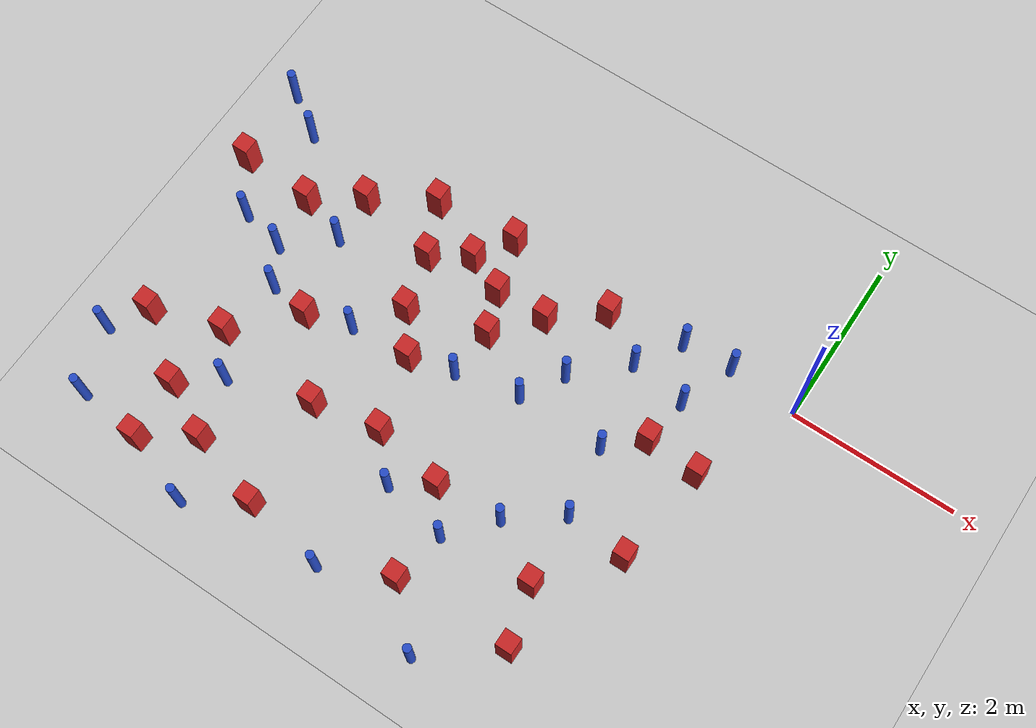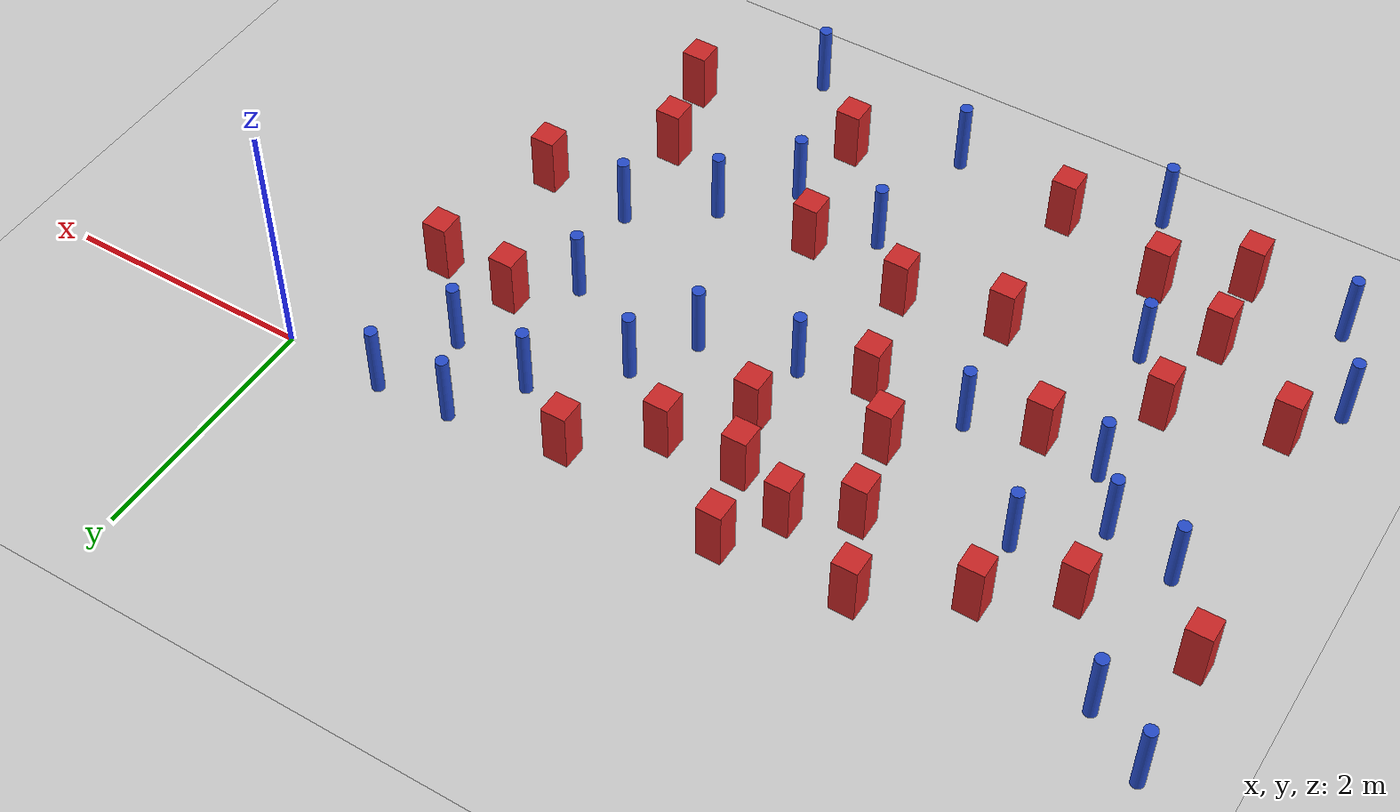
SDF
<sdf version="1.6">
 <world name="default">
  <model name="ground_plane">
   <static>1</static>
   <link name="link">
    <collision name="collision">
     <geometry><plane><normal>0 0 1</normal><size>100 100</size></plane></geometry>
     <surface><friction><ode><mu>100</mu><mu2>50</mu2></ode></friction></surface>
    </collision>
    <visual name="visual">
     <cast_shadows>0</cast_shadows>
     <geometry><plane><normal>0 0 1</normal><size>100 100</size></plane></geometry>
     <material>
      <ambient>1.0 1.0 1.0 1.0</ambient>
      <diffuse>0.8 0.8 0.8 1.0</diffuse>
      <specular>0.01 0.01 0.01 1.000000</specular>
     </material>
    </visual>
   </link>
  </model>
  <model name="square_post_obstacle0">
   <static>true</static>
   <pose>-0.671733654428 -2.42488033884 1.91545236811e-07 -7.35059704564e-06 1.12565212e-07 2.39332434364e-05</pose>
   <link name="link">
    <pose>0 0 0.25 0 -0 0</pose>
    <inertial>
     <mass>100</mass>
     <inertia>
      <ixx>0.166667</ixx>
      <ixy>0</ixy>
      <ixz>0</ixz>
      <iyy>0.166667</iyy>
      <iyz>0</iyz>
      <izz>0.166667</izz>
     </inertia>
    </inertial>
    <collision name="collision"><geometry><box><size>.2 .2 .5</size></box></geometry></collision>
    <visual name="visual">
     <geometry><box><size>.2 .2 .5</size></box></geometry>
     <material>
      <script><name>Gazebo/Red</name><uri>file://media/materials/scripts/gazebo.material</uri></script>
     </material>
    </visual>
   </link>
  </model>
  <model name="square_post_obstacle2">
   <static>true</static>
   <pose>-5.12397124756 -2.05312310392 1.91545236811e-07 -7.35059704564e-06 1.12565212e-07 2.39332434364e-05</pose>
   <link name="link">
    <pose>0 0 0.25 0 -0 0</pose>
    <inertial>
     <mass>100</mass>
     <inertia>
      <ixx>0.166667</ixx>
      <ixy>0</ixy>
      <ixz>0</ixz>
      <iyy>0.166667</iyy>
      <iyz>0</iyz>
      <izz>0.166667</izz>
     </inertia>
    </inertial>
    <collision name="collision"><geometry><box><size>.2 .2 .5</size></box></geometry></collision>
    <visual name="visual">
     <geometry><box><size>.2 .2 .5</size></box></geometry>
     <material>
      <script><name>Gazebo/Red</name><uri>file://media/materials/scripts/gazebo.material</uri></script>
     </material>
    </visual>
   </link>
  </model>
  <model name="square_post_obstacle7">
   <static>true</static>
   <pose>-1.14959347835 -1.18398450333 1.91545236811e-07 -7.35059704564e-06 1.12565212e-07 2.39332434364e-05</pose>
   <link name="link">
    <pose>0 0 0.25 0 -0 0</pose>
    <inertial>
     <mass>100</mass>
     <inertia>
      <ixx>0.166667</ixx>
      <ixy>0</ixy>
      <ixz>0</ixz>
      <iyy>0.166667</iyy>
      <iyz>0</iyz>
      <izz>0.166667</izz>
     </inertia>
    </inertial>
    <collision name="collision"><geometry><box><size>.2 .2 .5</size></box></geometry></collision>
    <visual name="visual">
     <geometry><box><size>.2 .2 .5</size></box></geometry>
     <material>
      <script><name>Gazebo/Red</name><uri>file://media/materials/scripts/gazebo.material</uri></script>
     </material>
    </visual>
   </link>
  </model>
  <model name="square_post_obstacle8">
   <static>true</static>
   <pose>-3.62353919109 -2.70946755188 1.91545236811e-07 -7.35059704564e-06 1.12565212e-07 2.39332434364e-05</pose>
   <link name="link">
    <pose>0 0 0.25 0 -0 0</pose>
    <inertial>
     <mass>100</mass>
     <inertia>
      <ixx>0.166667</ixx>
      <ixy>0</ixy>
      <ixz>0</ixz>
      <iyy>0.166667</iyy>
      <iyz>0</iyz>
      <izz>0.166667</izz>
     </inertia>
    </inertial>
    <collision name="collision"><geometry><box><size>.2 .2 .5</size></box></geometry></collision>
    <visual name="visual">
     <geometry><box><size>.2 .2 .5</size></box></geometry>
     <material>
      <script><name>Gazebo/Red</name><uri>file://media/materials/scripts/gazebo.material</uri></script>
     </material>
    </visual>
   </link>
  </model>
  <model name="pole_obstacle12">
   <static>true</static>
   <pose>-6.42299217875 -0.172170446409 7.38925637345e-09 -8.471706928e-08 1.24976765188e-08 -1.74513093011e-07</pose>
   <link name="link">
    <pose>0 0 0.3 0 -0 0</pose>
    <inertial>
     <mass>1</mass>
     <inertia><ixx>0.145833</ixx><ixy>0</ixy><ixz>0</ixz><iyy>0.145833</iyy><iyz>0</iyz><izz>0.125</izz></inertia>
    </inertial>
    <collision name="collision">
     <geometry><cylinder><radius>0.05</radius><length>.6</length></cylinder></geometry>
    </collision>
    <visual name="visual">
     <geometry><cylinder><radius>0.05</radius><length>.6</length></cylinder></geometry>
     <material>
      <script><name>Gazebo/Blue</name><uri>file://media/materials/scripts/gazebo.material</uri></script>
     </material>
    </visual>
   </link>
  </model>
  <model name="pole_obstacle13">
   <static>true</static>
   <pose>-1.06651826613 -0.618650534359 7.38925637345e-09 -8.47170692799e-08 1.24976765075e-08 -1.74513093017e-07</pose>
   <link name="link">
    <pose>0 0 0.3 0 -0 0</pose>
    <inertial>
     <mass>1</mass>
     <inertia><ixx>0.145833</ixx><ixy>0</ixy><ixz>0</ixz><iyy>0.145833</iyy><iyz>0</iyz><izz>0.125</izz></inertia>
    </inertial>
    <collision name="collision">
     <geometry><cylinder><radius>0.05</radius><length>.6</length></cylinder></geometry>
    </collision>
    <visual name="visual">
     <geometry><cylinder><radius>0.05</radius><length>.6</length></cylinder></geometry>
     <material>
      <script><name>Gazebo/Blue</name><uri>file://media/materials/scripts/gazebo.material</uri></script>
     </material>
    </visual>
   </link>
  </model>
  <model name="pole_obstacle16">
   <static>true</static>
   <pose>-4.60244024358 -1.88865574683 7.38925637345e-09 -8.471706928e-08 1.24976765134e-08 -1.74513093015e-07</pose>
   <link name="link">
    <pose>0 0 0.3 0 -0 0</pose>
    <inertial>
     <mass>1</mass>
     <inertia><ixx>0.145833</ixx><ixy>0</ixy><ixz>0</ixz><iyy>0.145833</iyy><iyz>0</iyz><izz>0.125</izz></inertia>
    </inertial>
    <collision name="collision">
     <geometry><cylinder><radius>0.05</radius><length>.6</length></cylinder></geometry>
    </collision>
    <visual name="visual">
     <geometry><cylinder><radius>0.05</radius><length>.6</length></cylinder></geometry>
     <material>
      <script><name>Gazebo/Blue</name><uri>file://media/materials/scripts/gazebo.material</uri></script>
     </material>
    </visual>
   </link>
  </model>
  <model name="square_post_obstacle23">
   <static>true</static>
   <pose>-4.39261713382 -0.714989446906 1.91545236811e-07 -7.35059704564e-06 1.12565212e-07 2.39332434364e-05</pose>
   <link name="link">
    <pose>0 0 0.25 0 -0 0</pose>
    <inertial>
     <mass>100</mass>
     <inertia>
      <ixx>0.166667</ixx>
      <ixy>0</ixy>
      <ixz>0</ixz>
      <iyy>0.166667</iyy>
      <iyz>0</iyz>
      <izz>0.166667</izz>
     </inertia>
    </inertial>
    <collision name="collision"><geometry><box><size>.2 .2 .5</size></box></geometry></collision>
    <visual name="visual">
     <geometry><box><size>.2 .2 .5</size></box></geometry>
     <material>
      <script><name>Gazebo/Red</name><uri>file://media/materials/scripts/gazebo.material</uri></script>
     </material>
    </visual>
   </link>
  </model>
  <model name="pole_obstacle26">
   <static>true</static>
   <pose>-1.93800309846 -4.52485083543 7.38925637345e-09 -8.47170692799e-08 1.24976765033e-08 -1.74513093018e-07</pose>
   <link name="link">
    <pose>0 0 0.3 0 -0 0</pose>
    <inertial>
     <mass>1</mass>
     <inertia><ixx>0.145833</ixx><ixy>0</ixy><ixz>0</ixz><iyy>0.145833</iyy><iyz>0</iyz><izz>0.125</izz></inertia>
    </inertial>
    <collision name="collision">
     <geometry><cylinder><radius>0.05</radius><length>.6</length></cylinder></geometry>
    </collision>
    <visual name="visual">
     <geometry><cylinder><radius>0.05</radius><length>.6</length></cylinder></geometry>
     <material>
      <script><name>Gazebo/Blue</name><uri>file://media/materials/scripts/gazebo.material</uri></script>
     </material>
    </visual>
   </link>
  </model>
  <model name="pole_obstacle33">
   <static>true</static>
   <pose>-6.57940979763 -4.15489953338 7.38925637345e-09 -8.47170692796e-08 1.24976764786e-08 -1.74513093032e-07</pose>
   <link name="link">
    <pose>0 0 0.3 0 -0 0</pose>
    <inertial>
     <mass>1</mass>
     <inertia><ixx>0.145833</ixx><ixy>0</ixy><ixz>0</ixz><iyy>0.145833</iyy><iyz>0</iyz><izz>0.125</izz></inertia>
    </inertial>
    <collision name="collision">
     <geometry><cylinder><radius>0.05</radius><length>.6</length></cylinder></geometry>
    </collision>
    <visual name="visual">
     <geometry><cylinder><radius>0.05</radius><length>.6</length></cylinder></geometry>
     <material>
      <script><name>Gazebo/Blue</name><uri>file://media/materials/scripts/gazebo.material</uri></script>
     </material>
    </visual>
   </link>
  </model>
  <model name="pole_obstacle36">
   <static>true</static>
   <pose>-3.19765262666 -3.16478663155 7.38925637345e-09 -8.47170692798e-08 1.24976764939e-08 -1.74513093025e-07</pose>
   <link name="link">
    <pose>0 0 0.3 0 -0 0</pose>
    <inertial>
     <mass>1</mass>
     <inertia><ixx>0.145833</ixx><ixy>0</ixy><ixz>0</ixz><iyy>0.145833</iyy><iyz>0</iyz><izz>0.125</izz></inertia>
    </inertial>
    <collision name="collision">
     <geometry><cylinder><radius>0.05</radius><length>.6</length></cylinder></geometry>
    </collision>
    <visual name="visual">
     <geometry><cylinder><radius>0.05</radius><length>.6</length></cylinder></geometry>
     <material>
      <script><name>Gazebo/Blue</name><uri>file://media/materials/scripts/gazebo.material</uri></script>
     </material>
    </visual>
   </link>
  </model>
  <model name="pole_obstacle37">
   <static>true</static>
   <pose>-3.33767189078 -1.70373802389 7.38925637345e-09 -8.47170692796e-08 1.24976764713e-08 -1.74513093037e-07</pose>
   <link name="link">
    <pose>0 0 0.3 0 -0 0</pose>
    <inertial>
     <mass>1</mass>
     <inertia><ixx>0.145833</ixx><ixy>0</ixy><ixz>0</ixz><iyy>0.145833</iyy><iyz>0</iyz><izz>0.125</izz></inertia>
    </inertial>
    <collision name="collision">
     <geometry><cylinder><radius>0.05</radius><length>.6</length></cylinder></geometry>
    </collision>
    <visual name="visual">
     <geometry><cylinder><radius>0.05</radius><length>.6</length></cylinder></geometry>
     <material>
      <script><name>Gazebo/Blue</name><uri>file://media/materials/scripts/gazebo.material</uri></script>
     </material>
    </visual>
   </link>
  </model>
  <model name="square_post_obstacle38">
   <static>true</static>
   <pose>-2.76455460391 -2.86557663639 1.91545236811e-07 -7.35059704564e-06 1.12565212e-07 2.39332434364e-05</pose>
   <link name="link">
    <pose>0 0 0.25 0 -0 0</pose>
    <inertial>
     <mass>100</mass>
     <inertia>
      <ixx>0.166667</ixx>
      <ixy>0</ixy>
      <ixz>0</ixz>
      <iyy>0.166667</iyy>
      <iyz>0</iyz>
      <izz>0.166667</izz>
     </inertia>
    </inertial>
    <collision name="collision"><geometry><box><size>.2 .2 .5</size></box></geometry></collision>
    <visual name="visual">
     <geometry><box><size>.2 .2 .5</size></box></geometry>
     <material>
      <script><name>Gazebo/Red</name><uri>file://media/materials/scripts/gazebo.material</uri></script>
     </material>
    </visual>
   </link>
  </model>
  <model name="square_post_obstacle39">
   <static>true</static>
   <pose>-1.14247427568 -3.88984097832 1.91545236811e-07 -7.35059704564e-06 1.12565212e-07 2.39332434364e-05</pose>
   <link name="link">
    <pose>0 0 0.25 0 -0 0</pose>
    <inertial>
     <mass>100</mass>
     <inertia>
      <ixx>0.166667</ixx>
      <ixy>0</ixy>
      <ixz>0</ixz>
      <iyy>0.166667</iyy>
      <iyz>0</iyz>
      <izz>0.166667</izz>
     </inertia>
    </inertial>
    <collision name="collision"><geometry><box><size>.2 .2 .5</size></box></geometry></collision>
    <visual name="visual">
     <geometry><box><size>.2 .2 .5</size></box></geometry>
     <material>
      <script><name>Gazebo/Red</name><uri>file://media/materials/scripts/gazebo.material</uri></script>
     </material>
    </visual>
   </link>
  </model>
  <model name="square_post_obstacle40">
   <static>true</static>
   <pose>-3.8664431587 -1.83863198993 1.91545236811e-07 -7.35059704564e-06 1.12565212e-07 2.39332434364e-05</pose>
   <link name="link">
    <pose>0 0 0.25 0 -0 0</pose>
    <inertial>
     <mass>100</mass>
     <inertia>
      <ixx>0.166667</ixx>
      <ixy>0</ixy>
      <ixz>0</ixz>
      <iyy>0.166667</iyy>
      <iyz>0</iyz>
      <izz>0.166667</izz>
     </inertia>
    </inertial>
    <collision name="collision"><geometry><box><size>.2 .2 .5</size></box></geometry></collision>
    <visual name="visual">
     <geometry><box><size>.2 .2 .5</size></box></geometry>
     <material>
      <script><name>Gazebo/Red</name><uri>file://media/materials/scripts/gazebo.material</uri></script>
     </material>
    </visual>
   </link>
  </model>
  <model name="square_post_obstacle50">
   <static>true</static>
   <pose>-0.518843326424 -1.22121335687 1.91545236811e-07 -7.35059704564e-06 1.12565212e-07 2.39332434364e-05</pose>
   <link name="link">
    <pose>0 0 0.25 0 -0 0</pose>
    <inertial>
     <mass>100</mass>
     <inertia>
      <ixx>0.166667</ixx>
      <ixy>0</ixy>
      <ixz>0</ixz>
      <iyy>0.166667</iyy>
      <iyz>0</iyz>
      <izz>0.166667</izz>
     </inertia>
    </inertial>
    <collision name="collision"><geometry><box><size>.2 .2 .5</size></box></geometry></collision>
    <visual name="visual">
     <geometry><box><size>.2 .2 .5</size></box></geometry>
     <material>
      <script><name>Gazebo/Red</name><uri>file://media/materials/scripts/gazebo.material</uri></script>
     </material>
    </visual>
   </link>
  </model>
  <model name="square_post_obstacle52">
   <static>true</static>
   <pose>-4.3007389357 -4.12628982418 1.91545236811e-07 -7.35059704564e-06 1.12565212e-07 2.39332434364e-05</pose>
   <link name="link">
    <pose>0 0 0.25 0 -0 0</pose>
    <inertial>
     <mass>100</mass>
     <inertia>
      <ixx>0.166667</ixx>
      <ixy>0</ixy>
      <ixz>0</ixz>
      <iyy>0.166667</iyy>
      <iyz>0</iyz>
      <izz>0.166667</izz>
     </inertia>
    </inertial>
    <collision name="collision"><geometry><box><size>.2 .2 .5</size></box></geometry></collision>
    <visual name="visual">
     <geometry><box><size>.2 .2 .5</size></box></geometry>
     <material>
      <script><name>Gazebo/Red</name><uri>file://media/materials/scripts/gazebo.material</uri></script>
     </material>
    </visual>
   </link>
  </model>
  <model name="square_post_obstacle56">
   <static>true</static>
   <pose>-4.66814460139 -0.0907817496546 1.91545236811e-07 -7.35059704564e-06 1.12565212e-07 2.39332434364e-05</pose>
   <link name="link">
    <pose>0 0 0.25 0 -0 0</pose>
    <inertial>
     <mass>100</mass>
     <inertia>
      <ixx>0.166667</ixx>
      <ixy>0</ixy>
      <ixz>0</ixz>
      <iyy>0.166667</iyy>
      <iyz>0</iyz>
      <izz>0.166667</izz>
     </inertia>
    </inertial>
    <collision name="collision"><geometry><box><size>.2 .2 .5</size></box></geometry></collision>
    <visual name="visual">
     <geometry><box><size>.2 .2 .5</size></box></geometry>
     <material>
      <script><name>Gazebo/Red</name><uri>file://media/materials/scripts/gazebo.material</uri></script>
     </material>
    </visual>
   </link>
  </model>
  <model name="square_post_obstacle81">
   <static>true</static>
   <pose>-5.74271965594 -2.7100166834 1.91545236811e-07 -7.35059704564e-06 1.12565212e-07 2.39332434364e-05</pose>
   <link name="link">
    <pose>0 0 0.25 0 -0 0</pose>
    <inertial>
     <mass>100</mass>
     <inertia>
      <ixx>0.166667</ixx>
      <ixy>0</ixy>
      <ixz>0</ixz>
      <iyy>0.166667</iyy>
      <iyz>0</iyz>
      <izz>0.166667</izz>
     </inertia>
    </inertial>
    <collision name="collision"><geometry><box><size>.2 .2 .5</size></box></geometry></collision>
    <visual name="visual">
     <geometry><box><size>.2 .2 .5</size></box></geometry>
     <material>
      <script><name>Gazebo/Red</name><uri>file://media/materials/scripts/gazebo.material</uri></script>
     </material>
    </visual>
   </link>
  </model>
  <model name="pole_obstacle94">
   <static>true</static>
   <pose>-6.90608918622 0.151358249637 7.38925637345e-09 -8.47170692801e-08 1.24976765186e-08 -1.74513093012e-07</pose>
   <link name="link">
    <pose>0 0 0.3 0 -0 0</pose>
    <inertial>
     <mass>1</mass>
     <inertia><ixx>0.145833</ixx><ixy>0</ixy><ixz>0</ixz><iyy>0.145833</iyy><iyz>0</iyz><izz>0.125</izz></inertia>
    </inertial>
    <collision name="collision">
     <geometry><cylinder><radius>0.05</radius><length>.6</length></cylinder></geometry>
    </collision>
    <visual name="visual">
     <geometry><cylinder><radius>0.05</radius><length>.6</length></cylinder></geometry>
     <material>
      <script><name>Gazebo/Blue</name><uri>file://media/materials/scripts/gazebo.material</uri></script>
     </material>
    </visual>
   </link>
  </model>
  <model name="pole_obstacle99">
   <static>true</static>
   <pose>-2.4120016664 -3.31265799756 7.38925637345e-09 -8.47170692798e-08 1.24976764939e-08 -1.74513093025e-07</pose>
   <link name="link">
    <pose>0 0 0.3 0 -0 0</pose>
    <inertial>
     <mass>1</mass>
     <inertia><ixx>0.145833</ixx><ixy>0</ixy><ixz>0</ixz><iyy>0.145833</iyy><iyz>0</iyz><izz>0.125</izz></inertia>
    </inertial>
    <collision name="collision">
     <geometry><cylinder><radius>0.05</radius><length>.6</length></cylinder></geometry>
    </collision>
    <visual name="visual">
     <geometry><cylinder><radius>0.05</radius><length>.6</length></cylinder></geometry>
     <material>
      <script><name>Gazebo/Blue</name><uri>file://media/materials/scripts/gazebo.material</uri></script>
     </material>
    </visual>
   </link>
  </model>
  <model name="pole_obstacle102">
   <static>true</static>
   <pose>-2.30102163131 -1.05136653456 7.38925637345e-09 -8.471706928e-08 1.24976765152e-08 -1.74513093012e-07</pose>
   <link name="link">
    <pose>0 0 0.3 0 -0 0</pose>
    <inertial>
     <mass>1</mass>
     <inertia><ixx>0.145833</ixx><ixy>0</ixy><ixz>0</ixz><iyy>0.145833</iyy><iyz>0</iyz><izz>0.125</izz></inertia>
    </inertial>
    <collision name="collision">
     <geometry><cylinder><radius>0.05</radius><length>.6</length></cylinder></geometry>
    </collision>
    <visual name="visual">
     <geometry><cylinder><radius>0.05</radius><length>.6</length></cylinder></geometry>
     <material>
      <script><name>Gazebo/Blue</name><uri>file://media/materials/scripts/gazebo.material</uri></script>
     </material>
    </visual>
   </link>
  </model>
  <model name="pole_obstacle104">
   <static>true</static>
   <pose>-1.53023683792 -1.54221616889 7.38925637345e-09 -8.471706928e-08 1.24976765079e-08 -1.74513093017e-07</pose>
   <link name="link">
    <pose>0 0 0.3 0 -0 0</pose>
    <inertial>
     <mass>1</mass>
     <inertia><ixx>0.145833</ixx><ixy>0</ixy><ixz>0</ixz><iyy>0.145833</iyy><iyz>0</iyz><izz>0.125</izz></inertia>
    </inertial>
    <collision name="collision">
     <geometry><cylinder><radius>0.05</radius><length>.6</length></cylinder></geometry>
    </collision>
    <visual name="visual">
     <geometry><cylinder><radius>0.05</radius><length>.6</length></cylinder></geometry>
     <material>
      <script><name>Gazebo/Blue</name><uri>file://media/materials/scripts/gazebo.material</uri></script>
     </material>
    </visual>
   </link>
  </model>
  <model name="square_post_obstacle92">
   <static>true</static>
   <pose>-2.30812140573 -0.167077679171 1.91545236811e-07 -7.35059704564e-06 1.12565212e-07 2.39332434364e-05</pose>
   <link name="link">
    <pose>0 0 0.25 0 -0 0</pose>
    <inertial>
     <mass>100</mass>
     <inertia>
      <ixx>0.166667</ixx>
      <ixy>0</ixy>
      <ixz>0</ixz>
      <iyy>0.166667</iyy>
      <iyz>0</iyz>
      <izz>0.166667</izz>
     </inertia>
    </inertial>
    <collision name="collision"><geometry><box><size>.2 .2 .5</size></box></geometry></collision>
    <visual name="visual">
     <geometry><box><size>.2 .2 .5</size></box></geometry>
     <material>
      <script><name>Gazebo/Red</name><uri>file://media/materials/scripts/gazebo.material</uri></script>
     </material>
    </visual>
   </link>
  </model>
  <model name="square_post_obstacle93">
   <static>true</static>
   <pose>-5.94924740464 -0.898854560478 1.91545236811e-07 -7.35059704564e-06 1.12565212e-07 2.39332434364e-05</pose>
   <link name="link">
    <pose>0 0 0.25 0 -0 0</pose>
    <inertial>
     <mass>100</mass>
     <inertia>
      <ixx>0.166667</ixx>
      <ixy>0</ixy>
      <ixz>0</ixz>
      <iyy>0.166667</iyy>
      <iyz>0</iyz>
      <izz>0.166667</izz>
     </inertia>
    </inertial>
    <collision name="collision"><geometry><box><size>.2 .2 .5</size></box></geometry></collision>
    <visual name="visual">
     <geometry><box><size>.2 .2 .5</size></box></geometry>
     <material>
      <script><name>Gazebo/Red</name><uri>file://media/materials/scripts/gazebo.material</uri></script>
     </material>
    </visual>
   </link>
  </model>
  <model name="square_post_obstacle96">
   <static>true</static>
   <pose>-6.85229432353 -0.836929804726 1.91545236811e-07 -7.35059704564e-06 1.12565212e-07 2.39332434364e-05</pose>
   <link name="link">
    <pose>0 0 0.25 0 -0 0</pose>
    <inertial>
     <mass>100</mass>
     <inertia>
      <ixx>0.166667</ixx>
      <ixy>0</ixy>
      <ixz>0</ixz>
      <iyy>0.166667</iyy>
      <iyz>0</iyz>
      <izz>0.166667</izz>
     </inertia>
    </inertial>
    <collision name="collision"><geometry><box><size>.2 .2 .5</size></box></geometry></collision>
    <visual name="visual">
     <geometry><box><size>.2 .2 .5</size></box></geometry>
     <material>
      <script><name>Gazebo/Red</name><uri>file://media/materials/scripts/gazebo.material</uri></script>
     </material>
    </visual>
   </link>
  </model>
  <model name="pole_obstacle112">
   <static>true</static>
   <pose>-1.41616474138 -0.00914303323927 7.38925637345e-09 -8.47170692799e-08 1.24976765054e-08 -1.74513093017e-07</pose>
   <link name="link">
    <pose>0 0 0.3 0 -0 0</pose>
    <inertial>
     <mass>1</mass>
     <inertia><ixx>0.145833</ixx><ixy>0</ixy><ixz>0</ixz><iyy>0.145833</iyy><iyz>0</iyz><izz>0.125</izz></inertia>
    </inertial>
    <collision name="collision">
     <geometry><cylinder><radius>0.05</radius><length>.6</length></cylinder></geometry>
    </collision>
    <visual name="visual">
     <geometry><cylinder><radius>0.05</radius><length>.6</length></cylinder></geometry>
     <material>
      <script><name>Gazebo/Blue</name><uri>file://media/materials/scripts/gazebo.material</uri></script>
     </material>
    </visual>
   </link>
  </model>
  <model name="pole_obstacle113">
   <static>true</static>
   <pose>-5.89052544875 -1.55066792119 7.38925637345e-09 -8.471706928e-08 1.24976765134e-08 -1.74513093015e-07</pose>
   <link name="link">
    <pose>0 0 0.3 0 -0 0</pose>
    <inertial>
     <mass>1</mass>
     <inertia><ixx>0.145833</ixx><ixy>0</ixy><ixz>0</ixz><iyy>0.145833</iyy><iyz>0</iyz><izz>0.125</izz></inertia>
    </inertial>
    <collision name="collision">
     <geometry><cylinder><radius>0.05</radius><length>.6</length></cylinder></geometry>
    </collision>
    <visual name="visual">
     <geometry><cylinder><radius>0.05</radius><length>.6</length></cylinder></geometry>
     <material>
      <script><name>Gazebo/Blue</name><uri>file://media/materials/scripts/gazebo.material</uri></script>
     </material>
    </visual>
   </link>
  </model>
  <model name="pole_obstacle115">
   <static>true</static>
   <pose>-2.58674468558 -1.53868423981 7.38925637345e-09 -8.471706928e-08 1.24976765152e-08 -1.74513093012e-07</pose>
   <link name="link">
    <pose>0 0 0.3 0 -0 0</pose>
    <inertial>
     <mass>1</mass>
     <inertia><ixx>0.145833</ixx><ixy>0</ixy><ixz>0</ixz><iyy>0.145833</iyy><iyz>0</iyz><izz>0.125</izz></inertia>
    </inertial>
    <collision name="collision">
     <geometry><cylinder><radius>0.05</radius><length>.6</length></cylinder></geometry>
    </collision>
    <visual name="visual">
     <geometry><cylinder><radius>0.05</radius><length>.6</length></cylinder></geometry>
     <material>
      <script><name>Gazebo/Blue</name><uri>file://media/materials/scripts/gazebo.material</uri></script>
     </material>
    </visual>
   </link>
  </model>
  <model name="square_post_obstacle111">
   <static>true</static>
   <pose>-5.37993146855 -0.518728230878 1.91545236811e-07 -7.35059704564e-06 1.12565212e-07 2.39332434364e-05</pose>
   <link name="link">
    <pose>0 0 0.25 0 -0 0</pose>
    <inertial>
     <mass>100</mass>
     <inertia>
      <ixx>0.166667</ixx>
      <ixy>0</ixy>
      <ixz>0</ixz>
      <iyy>0.166667</iyy>
      <iyz>0</iyz>
      <izz>0.166667</izz>
     </inertia>
    </inertial>
    <collision name="collision"><geometry><box><size>.2 .2 .5</size></box></geometry></collision>
    <visual name="visual">
     <geometry><box><size>.2 .2 .5</size></box></geometry>
     <material>
      <script><name>Gazebo/Red</name><uri>file://media/materials/scripts/gazebo.material</uri></script>
     </material>
    </visual>
   </link>
  </model>
  <model name="square_post_obstacle112">
   <static>true</static>
   <pose>-6.58862168532 -2.96916792198 1.91545236811e-07 -7.35059704564e-06 1.12565212e-07 2.39332434364e-05</pose>
   <link name="link">
    <pose>0 0 0.25 0 -0 0</pose>
    <inertial>
     <mass>100</mass>
     <inertia>
      <ixx>0.166667</ixx>
      <ixy>0</ixy>
      <ixz>0</ixz>
      <iyy>0.166667</iyy>
      <iyz>0</iyz>
      <izz>0.166667</izz>
     </inertia>
    </inertial>
    <collision name="collision"><geometry><box><size>.2 .2 .5</size></box></geometry></collision>
    <visual name="visual">
     <geometry><box><size>.2 .2 .5</size></box></geometry>
     <material>
      <script><name>Gazebo/Red</name><uri>file://media/materials/scripts/gazebo.material</uri></script>
     </material>
    </visual>
   </link>
  </model>
  <model name="pole_obstacle121">
   <static>true</static>
   <pose>-6.43142364905 -1.42235777488 7.38925637345e-09 -8.471706928e-08 1.24976765134e-08 -1.74513093015e-07</pose>
   <link name="link">
    <pose>0 0 0.3 0 -0 0</pose>
    <inertial>
     <mass>1</mass>
     <inertia><ixx>0.145833</ixx><ixy>0</ixy><ixz>0</ixz><iyy>0.145833</iyy><iyz>0</iyz><izz>0.125</izz></inertia>
    </inertial>
    <collision name="collision">
     <geometry><cylinder><radius>0.05</radius><length>.6</length></cylinder></geometry>
    </collision>
    <visual name="visual">
     <geometry><cylinder><radius>0.05</radius><length>.6</length></cylinder></geometry>
     <material>
      <script><name>Gazebo/Blue</name><uri>file://media/materials/scripts/gazebo.material</uri></script>
     </material>
    </visual>
   </link>
  </model>
  <model name="pole_obstacle125">
   <static>true</static>
   <pose>-3.32099876891 -4.29779046698 7.38925637345e-09 -8.47170692794e-08 1.24976764468e-08 -1.7451309304e-07</pose>
   <link name="link">
    <pose>0 0 0.3 0 -0 0</pose>
    <inertial>
     <mass>1</mass>
     <inertia><ixx>0.145833</ixx><ixy>0</ixy><ixz>0</ixz><iyy>0.145833</iyy><iyz>0</iyz><izz>0.125</izz></inertia>
    </inertial>
    <collision name="collision">
     <geometry><cylinder><radius>0.05</radius><length>.6</length></cylinder></geometry>
    </collision>
    <visual name="visual">
     <geometry><cylinder><radius>0.05</radius><length>.6</length></cylinder></geometry>
     <material>
      <script><name>Gazebo/Blue</name><uri>file://media/materials/scripts/gazebo.material</uri></script>
     </material>
    </visual>
   </link>
  </model>
  <model name="pole_obstacle128">
   <static>true</static>
   <pose>-4.95572011508 -4.53695847304 7.38925637345e-09 -8.47170692796e-08 1.24976764786e-08 -1.74513093032e-07</pose>
   <link name="link">
    <pose>0 0 0.3 0 -0 0</pose>
    <inertial>
     <mass>1</mass>
     <inertia><ixx>0.145833</ixx><ixy>0</ixy><ixz>0</ixz><iyy>0.145833</iyy><iyz>0</iyz><izz>0.125</izz></inertia>
    </inertial>
    <collision name="collision">
     <geometry><cylinder><radius>0.05</radius><length>.6</length></cylinder></geometry>
    </collision>
    <visual name="visual">
     <geometry><cylinder><radius>0.05</radius><length>.6</length></cylinder></geometry>
     <material>
      <script><name>Gazebo/Blue</name><uri>file://media/materials/scripts/gazebo.material</uri></script>
     </material>
    </visual>
   </link>
  </model>
  <model name="square_post_obstacle116">
   <static>true</static>
   <pose>-4.4211692002 -2.85639949731 1.91545236811e-07 -7.35059704564e-06 1.12565212e-07 2.39332434364e-05</pose>
   <link name="link">
    <pose>0 0 0.25 0 -0 0</pose>
    <inertial>
     <mass>100</mass>
     <inertia>
      <ixx>0.166667</ixx>
      <ixy>0</ixy>
      <ixz>0</ixz>
      <iyy>0.166667</iyy>
      <iyz>0</iyz>
      <izz>0.166667</izz>
     </inertia>
    </inertial>
    <collision name="collision"><geometry><box><size>.2 .2 .5</size></box></geometry></collision>
    <visual name="visual">
     <geometry><box><size>.2 .2 .5</size></box></geometry>
     <material>
      <script><name>Gazebo/Red</name><uri>file://media/materials/scripts/gazebo.material</uri></script>
     </material>
    </visual>
   </link>
  </model>
  <model name="square_post_obstacle119">
   <static>true</static>
   <pose>-3.67390746381 -0.00636290708193 1.91545236811e-07 -7.35059704564e-06 1.12565212e-07 2.39332434364e-05</pose>
   <link name="link">
    <pose>0 0 0.25 0 -0 0</pose>
    <inertial>
     <mass>100</mass>
     <inertia>
      <ixx>0.166667</ixx>
      <ixy>0</ixy>
      <ixz>0</ixz>
      <iyy>0.166667</iyy>
      <iyz>0</iyz>
      <izz>0.166667</izz>
     </inertia>
    </inertial>
    <collision name="collision"><geometry><box><size>.2 .2 .5</size></box></geometry></collision>
    <visual name="visual">
     <geometry><box><size>.2 .2 .5</size></box></geometry>
     <material>
      <script><name>Gazebo/Red</name><uri>file://media/materials/scripts/gazebo.material</uri></script>
     </material>
    </visual>
   </link>
  </model>
  <model name="square_post_obstacle120">
   <static>true</static>
   <pose>-3.48445496899 -0.643727843184 1.91545236811e-07 -7.35059704564e-06 1.12565212e-07 2.39332434364e-05</pose>
   <link name="link">
    <pose>0 0 0.25 0 -0 0</pose>
    <inertial>
     <mass>100</mass>
     <inertia>
      <ixx>0.166667</ixx>
      <ixy>0</ixy>
      <ixz>0</ixz>
      <iyy>0.166667</iyy>
      <iyz>0</iyz>
      <izz>0.166667</izz>
     </inertia>
    </inertial>
    <collision name="collision"><geometry><box><size>.2 .2 .5</size></box></geometry></collision>
    <visual name="visual">
     <geometry><box><size>.2 .2 .5</size></box></geometry>
     <material>
      <script><name>Gazebo/Red</name><uri>file://media/materials/scripts/gazebo.material</uri></script>
     </material>
    </visual>
   </link>
  </model>
  <model name="pole_obstacle169">
   <static>true</static>
   <pose>-5.62347255528 -1.97769038189 7.38925637345e-09 -8.47170692801e-08 1.24976765219e-08 -1.74513093009e-07</pose>
   <link name="link">
    <pose>0 0 0.3 0 -0 0</pose>
    <inertial>
     <mass>1</mass>
     <inertia><ixx>0.145833</ixx><ixy>0</ixy><ixz>0</ixz><iyy>0.145833</iyy><iyz>0</iyz><izz>0.125</izz></inertia>
    </inertial>
    <collision name="collision">
     <geometry><cylinder><radius>0.05</radius><length>.6</length></cylinder></geometry>
    </collision>
    <visual name="visual">
     <geometry><cylinder><radius>0.05</radius><length>.6</length></cylinder></geometry>
     <material>
      <script><name>Gazebo/Blue</name><uri>file://media/materials/scripts/gazebo.material</uri></script>
     </material>
    </visual>
   </link>
  </model>
  <model name="pole_obstacle177">
   <static>true</static>
   <pose>-6.87709544104 -3.39963619152 7.38925637345e-09 -8.47170692798e-08 1.24976764937e-08 -1.74513093023e-07</pose>
   <link name="link">
    <pose>0 0 0.3 0 -0 0</pose>
    <inertial>
     <mass>1</mass>
     <inertia><ixx>0.145833</ixx><ixy>0</ixy><ixz>0</ixz><iyy>0.145833</iyy><iyz>0</iyz><izz>0.125</izz></inertia>
    </inertial>
    <collision name="collision">
     <geometry><cylinder><radius>0.05</radius><length>.6</length></cylinder></geometry>
    </collision>
    <visual name="visual">
     <geometry><cylinder><radius>0.05</radius><length>.6</length></cylinder></geometry>
     <material>
      <script><name>Gazebo/Blue</name><uri>file://media/materials/scripts/gazebo.material</uri></script>
     </material>
    </visual>
   </link>
  </model>
  <model name="square_post_obstacle168">
   <static>true</static>
   <pose>-2.52830286174 -3.93709876901 1.91545236811e-07 -7.35059704564e-06 1.12565212e-07 2.39332434364e-05</pose>
   <link name="link">
    <pose>0 0 0.25 0 -0 0</pose>
    <inertial>
     <mass>100</mass>
     <inertia>
      <ixx>0.166667</ixx>
      <ixy>0</ixy>
      <ixz>0</ixz>
      <iyy>0.166667</iyy>
      <iyz>0</iyz>
      <izz>0.166667</izz>
     </inertia>
    </inertial>
    <collision name="collision"><geometry><box><size>.2 .2 .5</size></box></geometry></collision>
    <visual name="visual">
     <geometry><box><size>.2 .2 .5</size></box></geometry>
     <material>
      <script><name>Gazebo/Red</name><uri>file://media/materials/scripts/gazebo.material</uri></script>
     </material>
    </visual>
   </link>
  </model>
  <model name="square_post_obstacle170">
   <static>true</static>
   <pose>-3.29562977151 -1.12428608428 1.91545236811e-07 -7.35059704564e-06 1.12565212e-07 2.39332434364e-05</pose>
   <link name="link">
    <pose>0 0 0.25 0 -0 0</pose>
    <inertial>
     <mass>100</mass>
     <inertia>
      <ixx>0.166667</ixx>
      <ixy>0</ixy>
      <ixz>0</ixz>
      <iyy>0.166667</iyy>
      <iyz>0</iyz>
      <izz>0.166667</izz>
     </inertia>
    </inertial>
    <collision name="collision"><geometry><box><size>.2 .2 .5</size></box></geometry></collision>
    <visual name="visual">
     <geometry><box><size>.2 .2 .5</size></box></geometry>
     <material>
      <script><name>Gazebo/Red</name><uri>file://media/materials/scripts/gazebo.material</uri></script>
     </material>
    </visual>
   </link>
  </model>
  <model name="pole_obstacle182">
   <static>true</static>
   <pose>-1.97889761884 -2.8056450551 7.38925637345e-09 -8.471706928e-08 1.24976765192e-08 -1.7451309301e-07</pose>
   <link name="link">
    <pose>0 0 0.3 0 -0 0</pose>
    <inertial>
     <mass>1</mass>
     <inertia><ixx>0.145833</ixx><ixy>0</ixy><ixz>0</ixz><iyy>0.145833</iyy><iyz>0</iyz><izz>0.125</izz></inertia>
    </inertial>
    <collision name="collision">
     <geometry><cylinder><radius>0.05</radius><length>.6</length></cylinder></geometry>
    </collision>
    <visual name="visual">
     <geometry><cylinder><radius>0.05</radius><length>.6</length></cylinder></geometry>
     <material>
      <script><name>Gazebo/Blue</name><uri>file://media/materials/scripts/gazebo.material</uri></script>
     </material>
    </visual>
   </link>
  </model>
  <model name="pole_obstacle186">
   <static>true</static>
   <pose>-1.74475691594 -0.524732174534 7.38925637345e-09 -8.47170692799e-08 1.24976765025e-08 -1.7451309302e-07</pose>
   <link name="link">
    <pose>0 0 0.3 0 -0 0</pose>
    <inertial>
     <mass>1</mass>
     <inertia><ixx>0.145833</ixx><ixy>0</ixy><ixz>0</ixz><iyy>0.145833</iyy><iyz>0</iyz><izz>0.125</izz></inertia>
    </inertial>
    <collision name="collision">
     <geometry><cylinder><radius>0.05</radius><length>.6</length></cylinder></geometry>
    </collision>
    <visual name="visual">
     <geometry><cylinder><radius>0.05</radius><length>.6</length></cylinder></geometry>
     <material>
      <script><name>Gazebo/Blue</name><uri>file://media/materials/scripts/gazebo.material</uri></script>
     </material>
    </visual>
   </link>
  </model>
  <model name="pole_obstacle187">
   <static>true</static>
   <pose>-1.39548656564 -2.37351698917 7.38925637345e-09 -8.47170692799e-08 1.24976765053e-08 -1.74513093017e-07</pose>
   <link name="link">
    <pose>0 0 0.3 0 -0 0</pose>
    <inertial>
     <mass>1</mass>
     <inertia><ixx>0.145833</ixx><ixy>0</ixy><ixz>0</ixz><iyy>0.145833</iyy><iyz>0</iyz><izz>0.125</izz></inertia>
    </inertial>
    <collision name="collision">
     <geometry><cylinder><radius>0.05</radius><length>.6</length></cylinder></geometry>
    </collision>
    <visual name="visual">
     <geometry><cylinder><radius>0.05</radius><length>.6</length></cylinder></geometry>
     <material>
      <script><name>Gazebo/Blue</name><uri>file://media/materials/scripts/gazebo.material</uri></script>
     </material>
    </visual>
   </link>
  </model>
  <model name="square_post_obstacle176">
   <static>true</static>
   <pose>-1.33108220673 -3.19893673045 1.91545236811e-07 -7.35059704564e-06 1.12565212e-07 2.39332434364e-05</pose>
   <link name="link">
    <pose>0 0 0.25 0 -0 0</pose>
    <inertial>
     <mass>100</mass>
     <inertia>
      <ixx>0.166667</ixx>
      <ixy>0</ixy>
      <ixz>0</ixz>
      <iyy>0.166667</iyy>
      <iyz>0</iyz>
      <izz>0.166667</izz>
     </inertia>
    </inertial>
    <collision name="collision"><geometry><box><size>.2 .2 .5</size></box></geometry></collision>
    <visual name="visual">
     <geometry><box><size>.2 .2 .5</size></box></geometry>
     <material>
      <script><name>Gazebo/Red</name><uri>file://media/materials/scripts/gazebo.material</uri></script>
     </material>
    </visual>
   </link>
  </model>
  <model name="square_post_obstacle184">
   <static>true</static>
   <pose>-5.19875224824 -3.8499003194 1.91545236811e-07 -7.35059704564e-06 1.12565212e-07 2.39332434364e-05</pose>
   <link name="link">
    <pose>0 0 0.25 0 -0 0</pose>
    <inertial>
     <mass>100</mass>
     <inertia>
      <ixx>0.166667</ixx>
      <ixy>0</ixy>
      <ixz>0</ixz>
      <iyy>0.166667</iyy>
      <iyz>0</iyz>
      <izz>0.166667</izz>
     </inertia>
    </inertial>
    <collision name="collision"><geometry><box><size>.2 .2 .5</size></box></geometry></collision>
    <visual name="visual">
     <geometry><box><size>.2 .2 .5</size></box></geometry>
     <material>
      <script><name>Gazebo/Red</name><uri>file://media/materials/scripts/gazebo.material</uri></script>
     </material>
    </visual>
   </link>
  </model>
  <model name="square_post_obstacle185">
   <static>true</static>
   <pose>-5.78304708849 -4.22799953867 1.91545236811e-07 -7.35059704564e-06 1.12565212e-07 2.39332434364e-05</pose>
   <link name="link">
    <pose>0 0 0.25 0 -0 0</pose>
    <inertial>
     <mass>100</mass>
     <inertia>
      <ixx>0.166667</ixx>
      <ixy>0</ixy>
      <ixz>0</ixz>
      <iyy>0.166667</iyy>
      <iyz>0</iyz>
      <izz>0.166667</izz>
     </inertia>
    </inertial>
    <collision name="collision"><geometry><box><size>.2 .2 .5</size></box></geometry></collision>
    <visual name="visual">
     <geometry><box><size>.2 .2 .5</size></box></geometry>
     <material>
      <script><name>Gazebo/Red</name><uri>file://media/materials/scripts/gazebo.material</uri></script>
     </material>
    </visual>
   </link>
  </model>
  <model name="square_post_obstacle192">
   <static>true</static>
   <pose>-2.86547037269 -0.616369441955 1.91545236811e-07 -7.35059704564e-06 1.12565212e-07 2.39332434364e-05</pose>
   <link name="link">
    <pose>0 0 0.25 0 -0 0</pose>
    <inertial>
     <mass>100</mass>
     <inertia>
      <ixx>0.166667</ixx>
      <ixy>0</ixy>
      <ixz>0</ixz>
      <iyy>0.166667</iyy>
      <iyz>0</iyz>
      <izz>0.166667</izz>
     </inertia>
    </inertial>
    <collision name="collision"><geometry><box><size>.2 .2 .5</size></box></geometry></collision>
    <visual name="visual">
     <geometry><box><size>.2 .2 .5</size></box></geometry>
     <material>
      <script><name>Gazebo/Red</name><uri>file://media/materials/scripts/gazebo.material</uri></script>
     </material>
    </visual>
   </link>
  </model>
  <model name="pole_obstacle189">
   <static>true</static>
   <pose>-5.37125840362 -1.09419800122 7.38925637345e-09 -8.471706928e-08 1.24976765134e-08 -1.74513093015e-07</pose>
   <link name="link">
    <pose>0 0 0.3 0 -0 0</pose>
    <inertial>
     <mass>1</mass>
     <inertia><ixx>0.145833</ixx><ixy>0</ixy><ixz>0</ixz><iyy>0.145833</iyy><iyz>0</iyz><izz>0.125</izz></inertia>
    </inertial>
    <collision name="collision">
     <geometry><cylinder><radius>0.05</radius><length>.6</length></cylinder></geometry>
    </collision>
    <visual name="visual">
     <geometry><cylinder><radius>0.05</radius><length>.6</length></cylinder></geometry>
     <material>
      <script><name>Gazebo/Blue</name><uri>file://media/materials/scripts/gazebo.material</uri></script>
     </material>
    </visual>
   </link>
  </model>
  <model name="pole_obstacle194">
   <static>true</static>
   <pose>-0.823167722632 0.0314894895691 7.38925637345e-09 -8.471706928e-08 1.24976765065e-08 -1.74513093017e-07</pose>
   <link name="link">
    <pose>0 0 0.3 0 -0 0</pose>
    <inertial>
     <mass>1</mass>
     <inertia><ixx>0.145833</ixx><ixy>0</ixy><ixz>0</ixz><iyy>0.145833</iyy><iyz>0</iyz><izz>0.125</izz></inertia>
    </inertial>
    <collision name="collision">
     <geometry><cylinder><radius>0.05</radius><length>.6</length></cylinder></geometry>
    </collision>
    <visual name="visual">
     <geometry><cylinder><radius>0.05</radius><length>.6</length></cylinder></geometry>
     <material>
      <script><name>Gazebo/Blue</name><uri>file://media/materials/scripts/gazebo.material</uri></script>
     </material>
    </visual>
   </link>
  </model>
  <model name="pole_obstacle197">
   <static>true</static>
   <pose>-5.3986894047 -3.15853939634 7.38925637345e-09 -8.47170692798e-08 1.24976764937e-08 -1.74513093023e-07</pose>
   <link name="link">
    <pose>0 0 0.3 0 -0 0</pose>
    <inertial>
     <mass>1</mass>
     <inertia><ixx>0.145833</ixx><ixy>0</ixy><ixz>0</ixz><iyy>0.145833</iyy><iyz>0</iyz><izz>0.125</izz></inertia>
    </inertial>
    <collision name="collision">
     <geometry><cylinder><radius>0.05</radius><length>.6</length></cylinder></geometry>
    </collision>
    <visual name="visual">
     <geometry><cylinder><radius>0.05</radius><length>.6</length></cylinder></geometry>
     <material>
      <script><name>Gazebo/Blue</name><uri>file://media/materials/scripts/gazebo.material</uri></script>
     </material>
    </visual>
   </link>
  </model>
  <model name="square_post_obstacle210">
   <static>true</static>
   <pose>-3.94627594891 -0.446402532245 1.91545236811e-07 -7.35059704564e-06 1.12565212e-07 2.39332434364e-05</pose>
   <link name="link">
    <pose>0 0 0.25 0 -0 0</pose>
    <inertial>
     <mass>100</mass>
     <inertia>
      <ixx>0.166667</ixx>
      <ixy>0</ixy>
      <ixz>0</ixz>
      <iyy>0.166667</iyy>
      <iyz>0</iyz>
      <izz>0.166667</izz>
     </inertia>
    </inertial>
    <collision name="collision"><geometry><box><size>.2 .2 .5</size></box></geometry></collision>
    <visual name="visual">
     <geometry><box><size>.2 .2 .5</size></box></geometry>
     <material>
      <script><name>Gazebo/Red</name><uri>file://media/materials/scripts/gazebo.material</uri></script>
     </material>
    </visual>
   </link>
  </model>
  <model name="square_post_obstacle213">
   <static>true</static>
   <pose>-5.83860500645 -3.51927591337 1.91545236811e-07 -7.35059704564e-06 1.12565212e-07 2.39332434364e-05</pose>
   <link name="link">
    <pose>0 0 0.25 0 -0 0</pose>
    <inertial>
     <mass>100</mass>
     <inertia>
      <ixx>0.166667</ixx>
      <ixy>0</ixy>
      <ixz>0</ixz>
      <iyy>0.166667</iyy>
      <iyz>0</iyz>
      <izz>0.166667</izz>
     </inertia>
    </inertial>
    <collision name="collision"><geometry><box><size>.2 .2 .5</size></box></geometry></collision>
    <visual name="visual">
     <geometry><box><size>.2 .2 .5</size></box></geometry>
     <material>
      <script><name>Gazebo/Red</name><uri>file://media/materials/scripts/gazebo.material</uri></script>
     </material>
    </visual>
   </link>
  </model>
  <model name="square_post_obstacle220">
   <static>true</static>
   <pose>-4.21223962654 -1.38340740226 1.91545236811e-07 -7.35059704564e-06 1.12565212e-07 2.39332434364e-05</pose>
   <link name="link">
    <pose>0 0 0.25 0 -0 0</pose>
    <inertial>
     <mass>100</mass>
     <inertia>
      <ixx>0.166667</ixx>
      <ixy>0</ixy>
      <ixz>0</ixz>
      <iyy>0.166667</iyy>
      <iyz>0</iyz>
      <izz>0.166667</izz>
     </inertia>
    </inertial>
    <collision name="collision"><geometry><box><size>.2 .2 .5</size></box></geometry></collision>
    <visual name="visual">
     <geometry><box><size>.2 .2 .5</size></box></geometry>
     <material>
      <script><name>Gazebo/Red</name><uri>file://media/materials/scripts/gazebo.material</uri></script>
     </material>
    </visual>
   </link>
  </model>
 </world>
</sdf>
